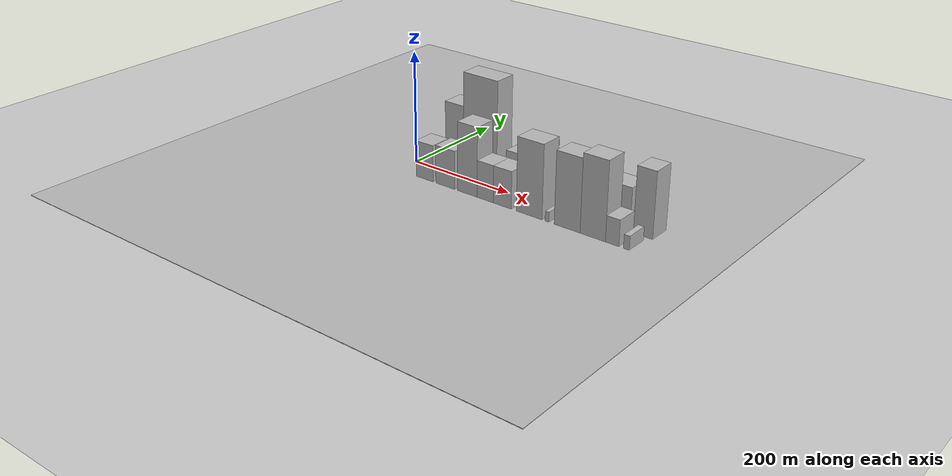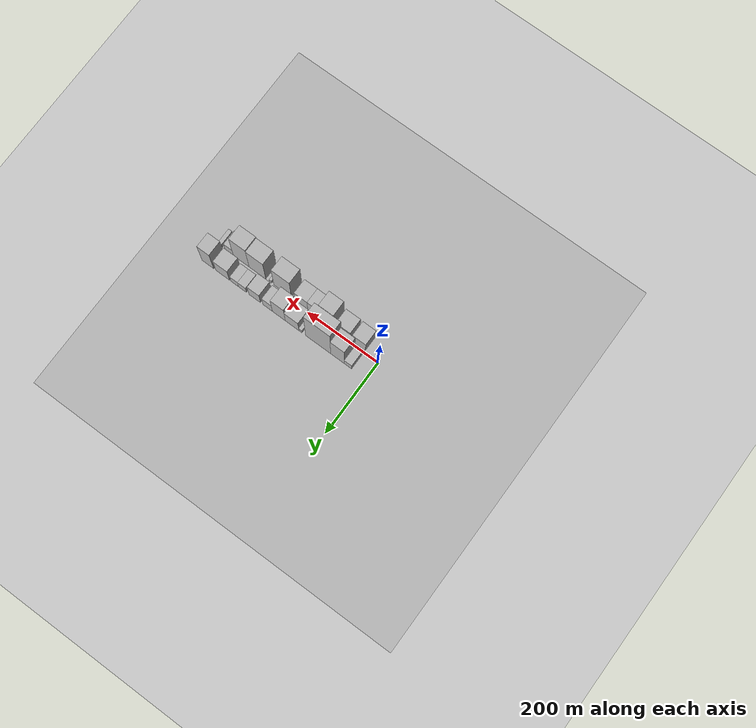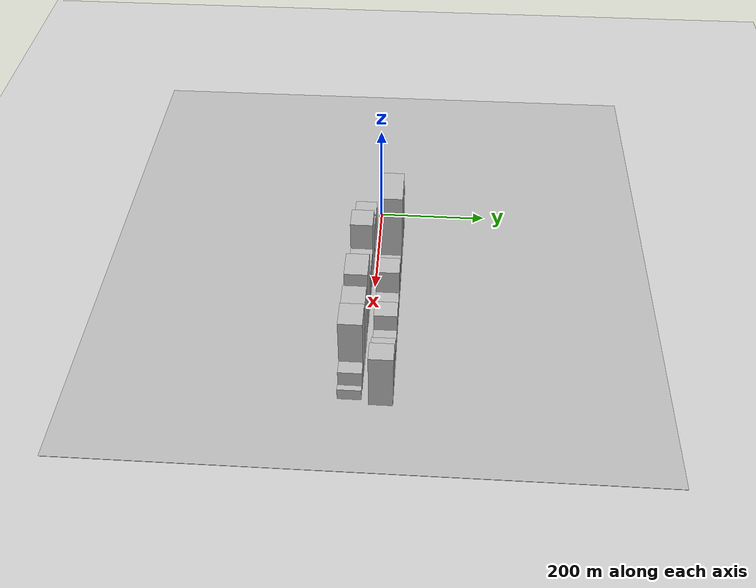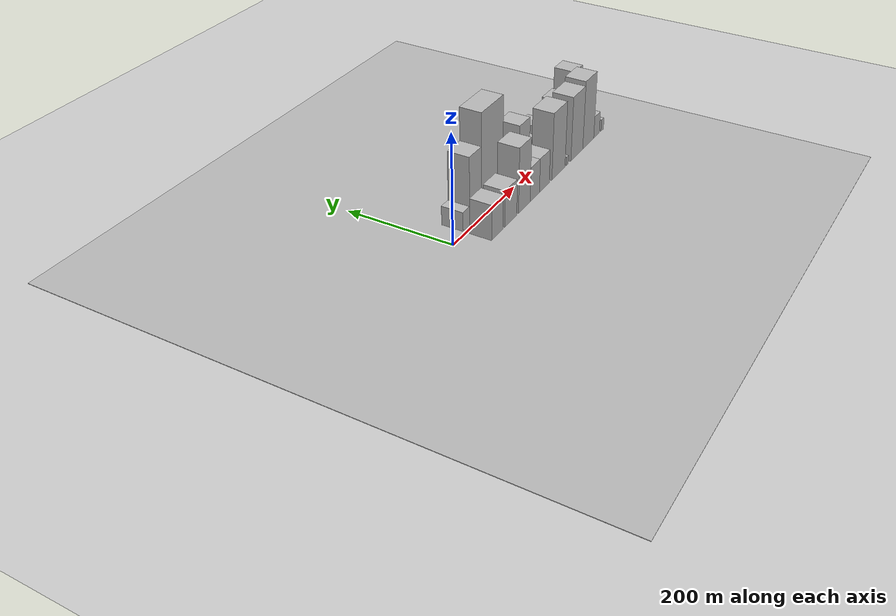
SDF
<?xml version="1.0" encoding="utf-8"?>

<sdf version="1.6">

   <world name="default">

      <gui fullscreen="0">

         <camera name="user_camera">

            <pose>-15 0 4.57585 0 0 0</pose>

            <view_controller>orbit</view_controller>

         </camera>

      </gui>

      <scene>

         <sky>

           <clouds>

             <speed>12</speed>

           </clouds>

         </sky>

         <ambient>0.4 0.4 0.4 1</ambient>

         <background>0.7 0.7 0.7 1</background>

         <shadows>1</shadows>

      </scene>

      <gravity>0 0 -9.8066</gravity>

      <magnetic_field>6e-06 2.3e-05 -4.2e-05</magnetic_field>

      <physics default="0" name="default_physics" type="ode">

         <ode>

            <solver>

               <type>quick</type>

               <iters>10</iters>

               <sor>1.0</sor>

               <use_dynamic_moi_rescaling>0</use_dynamic_moi_rescaling>

            </solver>

            <constraints>

               <cfm>0</cfm>

               <erp>0.2</erp>

               <contact_max_correcting_vel>100</contact_max_correcting_vel>

               <contact_surface_layer>0.001</contact_surface_layer>

            </constraints>

         </ode>

         <max_step_size>0.004</max_step_size>

         <real_time_factor>1</real_time_factor>

         <real_time_update_rate>250</real_time_update_rate>

      </physics>

      <light name="sun" type="directional">

         <cast_shadows>1</cast_shadows>

         <pose>0 0 10 0 0 0</pose>

         <diffuse>0.8 0.8 0.8 1</diffuse>

         <specular>0.2 0.2 0.2 1</specular>

         <attenuation>

            <range>1000</range>

            <constant>0.9</constant>

            <linear>0.01</linear>

            <quadratic>0.001</quadratic>

         </attenuation>

         <direction>-0.5 0.1 -0.9</direction>

      </light>

      <include>

         <name>ground_plane_1</name>

         <uri>model://HANNAS_ground_plane</uri>

         <pose>0 0 0  0 0 0</pose>

      </include>

      <include>

         <name>ground_plane_2</name>

         <uri>model://HANNAS_ground_plane</uri>

         <pose>100 0 0  0 0 0</pose>

      </include>

      <model name="building_1">

         <static>1</static>

         <pose frame="">50.4767 26.0000 0 0.000000 0.000000 1.570796</pose>

         <link name="link">

            <pose frame="">0 0 18.00 0 0 0</pose>

            <collision name="collision">

               <geometry>

                  <box>

                     <size>40.0000 20.9534 36.0000</size>

                  </box>

               </geometry>

               <max_contacts>10</max_contacts>

               <surface>

                  <contact>

                     <ode/>

                  </contact>

                  <bounce/>

                  <friction>

                     <torsional>

                        <ode/>

                     </torsional>

                     <ode/>

                  </friction>

               </surface>

            </collision>

            <visual name="visual">

               <cast_shadows>0</cast_shadows>

               <geometry>

                  <box>

                     <size>40.0000 20.9534 36.0000</size>

                  </box>

               </geometry>

               <material>

                  <script>

                     <uri>model://HANNAS_wall/materials/scripts</uri>

                     <uri>model://HANNAS_wall/materials/textures</uri>

                     <name>vrc/HANNAS_wall</name>

                  </script>

               </material>

            </visual>

            <self_collide>0</self_collide>

            <enable_wind>0</enable_wind>

            <kinematic>0</kinematic>

         </link>

      </model>

      <model name="building_2">

         <static>1</static>

         <pose frame="">80.3056 26.0000 0 0.000000 0.000000 1.570796</pose>

         <link name="link">

            <pose frame="">0 0 63.00 0 0 0</pose>

            <collision name="collision">

               <geometry>

                  <box>

                     <size>40.0000 38.7043 126.0000</size>

                  </box>

               </geometry>

               <max_contacts>10</max_contacts>

               <surface>

                  <contact>

                     <ode/>

                  </contact>

                  <bounce/>

                  <friction>

                     <torsional>

                        <ode/>

                     </torsional>

                     <ode/>

                  </friction>

               </surface>

            </collision>

            <visual name="visual">

               <cast_shadows>0</cast_shadows>

               <geometry>

                  <box>

                     <size>40.0000 38.7043 126.0000</size>

                  </box>

               </geometry>

               <material>

                  <script>

                     <uri>model://HANNAS_wall/materials/scripts</uri>

                     <uri>model://HANNAS_wall/materials/textures</uri>

                     <name>vrc/HANNAS_wall</name>

                  </script>

               </material>

            </visual>

            <self_collide>0</self_collide>

            <enable_wind>0</enable_wind>

            <kinematic>0</kinematic>

         </link>

      </model>

      <model name="building_3">

         <static>1</static>

         <pose frame="">135.0981 26.0000 0 0.000000 0.000000 1.570796</pose>

         <link name="link">

            <pose frame="">0 0 93.00 0 0 0</pose>

            <collision name="collision">

               <geometry>

                  <box>

                     <size>40.0000 70.8808 186.0000</size>

                  </box>

               </geometry>

               <max_contacts>10</max_contacts>

               <surface>

                  <contact>

                     <ode/>

                  </contact>

                  <bounce/>

                  <friction>

                     <torsional>

                        <ode/>

                     </torsional>

                     <ode/>

                  </friction>

               </surface>

            </collision>

            <visual name="visual">

               <cast_shadows>0</cast_shadows>

               <geometry>

                  <box>

                     <size>40.0000 70.8808 186.0000</size>

                  </box>

               </geometry>

               <material>

                  <script>

                     <uri>model://HANNAS_wall/materials/scripts</uri>

                     <uri>model://HANNAS_wall/materials/textures</uri>

                     <name>vrc/HANNAS_wall</name>

                  </script>

               </material>

            </visual>

            <self_collide>0</self_collide>

            <enable_wind>0</enable_wind>

            <kinematic>0</kinematic>

         </link>

      </model>

      <model name="building_4">

         <static>1</static>

         <pose frame="">185.2259 26.0000 0 0.000000 0.000000 1.570796</pose>

         <link name="link">

            <pose frame="">0 0 10.50 0 0 0</pose>

            <collision name="collision">

               <geometry>

                  <box>

                     <size>40.0000 9.3748 21.0000</size>

                  </box>

               </geometry>

               <max_contacts>10</max_contacts>

               <surface>

                  <contact>

                     <ode/>

                  </contact>

                  <bounce/>

                  <friction>

                     <torsional>

                        <ode/>

                     </torsional>

                     <ode/>

                  </friction>

               </surface>

            </collision>

            <visual name="visual">

               <cast_shadows>0</cast_shadows>

               <geometry>

                  <box>

                     <size>40.0000 9.3748 21.0000</size>

                  </box>

               </geometry>

               <material>

                  <script>

                     <uri>model://HANNAS_wall/materials/scripts</uri>

                     <uri>model://HANNAS_wall/materials/textures</uri>

                     <name>vrc/HANNAS_wall</name>

                  </script>

               </material>

            </visual>

            <self_collide>0</self_collide>

            <enable_wind>0</enable_wind>

            <kinematic>0</kinematic>

         </link>

      </model>

      <model name="building_5">

         <static>1</static>

         <pose frame="">209.4466 26.0000 0 0.000000 0.000000 1.570796</pose>

         <link name="link">

            <pose frame="">0 0 36.00 0 0 0</pose>

            <collision name="collision">

               <geometry>

                  <box>

                     <size>40.0000 39.0666 72.0000</size>

                  </box>

               </geometry>

               <max_contacts>10</max_contacts>

               <surface>

                  <contact>

                     <ode/>

                  </contact>

                  <bounce/>

                  <friction>

                     <torsional>

                        <ode/>

                     </torsional>

                     <ode/>

                  </friction>

               </surface>

            </collision>

            <visual name="visual">

               <cast_shadows>0</cast_shadows>

               <geometry>

                  <box>

                     <size>40.0000 39.0666 72.0000</size>

                  </box>

               </geometry>

               <material>

                  <script>

                     <uri>model://HANNAS_wall/materials/scripts</uri>

                     <uri>model://HANNAS_wall/materials/textures</uri>

                     <name>vrc/HANNAS_wall</name>

                  </script>

               </material>

            </visual>

            <self_collide>0</self_collide>

            <enable_wind>0</enable_wind>

            <kinematic>0</kinematic>

         </link>

      </model>

      <model name="building_6">

         <static>1</static>

         <pose frame="">247.3911 26.0000 0 0.000000 0.000000 1.570796</pose>

         <link name="link">

            <pose frame="">0 0 51.00 0 0 0</pose>

            <collision name="collision">

               <geometry>

                  <box>

                     <size>40.0000 36.8223 102.0000</size>

                  </box>

               </geometry>

               <max_contacts>10</max_contacts>

               <surface>

                  <contact>

                     <ode/>

                  </contact>

                  <bounce/>

                  <friction>

                     <torsional>

                        <ode/>

                     </torsional>

                     <ode/>

                  </friction>

               </surface>

            </collision>

            <visual name="visual">

               <cast_shadows>0</cast_shadows>

               <geometry>

                  <box>

                     <size>40.0000 36.8223 102.0000</size>

                  </box>

               </geometry>

               <material>

                  <script>

                     <uri>model://HANNAS_wall/materials/scripts</uri>

                     <uri>model://HANNAS_wall/materials/textures</uri>

                     <name>vrc/HANNAS_wall</name>

                  </script>

               </material>

            </visual>

            <self_collide>0</self_collide>

            <enable_wind>0</enable_wind>

            <kinematic>0</kinematic>

         </link>

      </model>

      <model name="building_7">

         <static>1</static>

         <pose frame="">279.3047 26.0000 0 0.000000 0.000000 1.570796</pose>

         <link name="link">

            <pose frame="">0 0 27.00 0 0 0</pose>

            <collision name="collision">

               <geometry>

                  <box>

                     <size>40.0000 27.0050 54.0000</size>

                  </box>

               </geometry>

               <max_contacts>10</max_contacts>

               <surface>

                  <contact>

                     <ode/>

                  </contact>

                  <bounce/>

                  <friction>

                     <torsional>

                        <ode/>

                     </torsional>

                     <ode/>

                  </friction>

               </surface>

            </collision>

            <visual name="visual">

               <cast_shadows>0</cast_shadows>

               <geometry>

                  <box>

                     <size>40.0000 27.0050 54.0000</size>

                  </box>

               </geometry>

               <material>

                  <script>

                     <uri>model://HANNAS_wall/materials/scripts</uri>

                     <uri>model://HANNAS_wall/materials/textures</uri>

                     <name>vrc/HANNAS_wall</name>

                  </script>

               </material>

            </visual>

            <self_collide>0</self_collide>

            <enable_wind>0</enable_wind>

            <kinematic>0</kinematic>

         </link>

      </model>

      <model name="building_8">

         <static>1</static>

         <pose frame="">316.4989 26.0000 0 0.000000 0.000000 1.570796</pose>

         <link name="link">

            <pose frame="">0 0 33.00 0 0 0</pose>

            <collision name="collision">

               <geometry>

                  <box>

                     <size>40.0000 33.3832 66.0000</size>

                  </box>

               </geometry>

               <max_contacts>10</max_contacts>

               <surface>

                  <contact>

                     <ode/>

                  </contact>

                  <bounce/>

                  <friction>

                     <torsional>

                        <ode/>

                     </torsional>

                     <ode/>

                  </friction>

               </surface>

            </collision>

            <visual name="visual">

               <cast_shadows>0</cast_shadows>

               <geometry>

                  <box>

                     <size>40.0000 33.3832 66.0000</size>

                  </box>

               </geometry>

               <material>

                  <script>

                     <uri>model://HANNAS_wall/materials/scripts</uri>

                     <uri>model://HANNAS_wall/materials/textures</uri>

                     <name>vrc/HANNAS_wall</name>

                  </script>

               </material>

            </visual>

            <self_collide>0</self_collide>

            <enable_wind>0</enable_wind>

            <kinematic>0</kinematic>

         </link>

      </model>

      <model name="building_9">

         <static>1</static>

         <pose frame="">351.6913 26.0000 0 0.000000 0.000000 1.570796</pose>

         <link name="link">

            <pose frame="">0 0 19.50 0 0 0</pose>

            <collision name="collision">

               <geometry>

                  <box>

                     <size>40.0000 23.0017 39.0000</size>

                  </box>

               </geometry>

               <max_contacts>10</max_contacts>

               <surface>

                  <contact>

                     <ode/>

                  </contact>

                  <bounce/>

                  <friction>

                     <torsional>

                        <ode/>

                     </torsional>

                     <ode/>

                  </friction>

               </surface>

            </collision>

            <visual name="visual">

               <cast_shadows>0</cast_shadows>

               <geometry>

                  <box>

                     <size>40.0000 23.0017 39.0000</size>

                  </box>

               </geometry>

               <material>

                  <script>

                     <uri>model://HANNAS_wall/materials/scripts</uri>

                     <uri>model://HANNAS_wall/materials/textures</uri>

                     <name>vrc/HANNAS_wall</name>

                  </script>

               </material>

            </visual>

            <self_collide>0</self_collide>

            <enable_wind>0</enable_wind>

            <kinematic>0</kinematic>

         </link>

      </model>

      <model name="building_10">

         <static>1</static>

         <pose frame="">374.2593 26.0000 0 0.000000 0.000000 1.570796</pose>

         <link name="link">

            <pose frame="">0 0 19.50 0 0 0</pose>

            <collision name="collision">

               <geometry>

                  <box>

                     <size>40.0000 22.1343 39.0000</size>

                  </box>

               </geometry>

               <max_contacts>10</max_contacts>

               <surface>

                  <contact>

                     <ode/>

                  </contact>

                  <bounce/>

                  <friction>

                     <torsional>

                        <ode/>

                     </torsional>

                     <ode/>

                  </friction>

               </surface>

            </collision>

            <visual name="visual">

               <cast_shadows>0</cast_shadows>

               <geometry>

                  <box>

                     <size>40.0000 22.1343 39.0000</size>

                  </box>

               </geometry>

               <material>

                  <script>

                     <uri>model://HANNAS_wall/materials/scripts</uri>

                     <uri>model://HANNAS_wall/materials/textures</uri>

                     <name>vrc/HANNAS_wall</name>

                  </script>

               </material>

            </visual>

            <self_collide>0</self_collide>

            <enable_wind>0</enable_wind>

            <kinematic>0</kinematic>

         </link>

      </model>

      <model name="building_11">

         <static>1</static>

         <pose frame="">409.3390 26.0000 0 0.000000 0.000000 1.570796</pose>

         <link name="link">

            <pose frame="">0 0 37.50 0 0 0</pose>

            <collision name="collision">

               <geometry>

                  <box>

                     <size>40.0000 40.0251 75.0000</size>

                  </box>

               </geometry>

               <max_contacts>10</max_contacts>

               <surface>

                  <contact>

                     <ode/>

                  </contact>

                  <bounce/>

                  <friction>

                     <torsional>

                        <ode/>

                     </torsional>

                     <ode/>

                  </friction>

               </surface>

            </collision>

            <visual name="visual">

               <cast_shadows>0</cast_shadows>

               <geometry>

                  <box>

                     <size>40.0000 40.0251 75.0000</size>

                  </box>

               </geometry>

               <material>

                  <script>

                     <uri>model://HANNAS_wall/materials/scripts</uri>

                     <uri>model://HANNAS_wall/materials/textures</uri>

                     <name>vrc/HANNAS_wall</name>

                  </script>

               </material>

            </visual>

            <self_collide>0</self_collide>

            <enable_wind>0</enable_wind>

            <kinematic>0</kinematic>

         </link>

      </model>

      <model name="building_12">

         <static>1</static>

         <pose frame="">452.5231 26.0000 0 0.000000 0.000000 1.570796</pose>

         <link name="link">

            <pose frame="">0 0 57.00 0 0 0</pose>

            <collision name="collision">

               <geometry>

                  <box>

                     <size>40.0000 34.3430 114.0000</size>

                  </box>

               </geometry>

               <max_contacts>10</max_contacts>

               <surface>

                  <contact>

                     <ode/>

                  </contact>

                  <bounce/>

                  <friction>

                     <torsional>

                        <ode/>

                     </torsional>

                     <ode/>

                  </friction>

               </surface>

            </collision>

            <visual name="visual">

               <cast_shadows>0</cast_shadows>

               <geometry>

                  <box>

                     <size>40.0000 34.3430 114.0000</size>

                  </box>

               </geometry>

               <material>

                  <script>

                     <uri>model://HANNAS_wall/materials/scripts</uri>

                     <uri>model://HANNAS_wall/materials/textures</uri>

                     <name>vrc/HANNAS_wall</name>

                  </script>

               </material>

            </visual>

            <self_collide>0</self_collide>

            <enable_wind>0</enable_wind>

            <kinematic>0</kinematic>

         </link>

      </model>

      <model name="building_13">

         <static>1</static>

         <pose frame="">58.4960 -26.0000 0 0.000000 0.000000 1.570796</pose>

         <link name="link">

            <pose frame="">0 0 33.00 0 0 0</pose>

            <collision name="collision">

               <geometry>

                  <box>

                     <size>40.0000 36.9920 66.0000</size>

                  </box>

               </geometry>

               <max_contacts>10</max_contacts>

               <surface>

                  <contact>

                     <ode/>

                  </contact>

                  <bounce/>

                  <friction>

                     <torsional>

                        <ode/>

                     </torsional>

                     <ode/>

                  </friction>

               </surface>

            </collision>

            <visual name="visual">

               <cast_shadows>0</cast_shadows>

               <geometry>

                  <box>

                     <size>40.0000 36.9920 66.0000</size>

                  </box>

               </geometry>

               <material>

                  <script>

                     <uri>model://HANNAS_wall/materials/scripts</uri>

                     <uri>model://HANNAS_wall/materials/textures</uri>

                     <name>vrc/HANNAS_wall</name>

                  </script>

               </material>

            </visual>

            <self_collide>0</self_collide>

            <enable_wind>0</enable_wind>

            <kinematic>0</kinematic>

         </link>

      </model>

      <model name="building_14">

         <static>1</static>

         <pose frame="">103.3198 -26.0000 0 0.000000 0.000000 1.570796</pose>

         <link name="link">

            <pose frame="">0 0 34.50 0 0 0</pose>

            <collision name="collision">

               <geometry>

                  <box>

                     <size>40.0000 40.6556 69.0000</size>

                  </box>

               </geometry>

               <max_contacts>10</max_contacts>

               <surface>

                  <contact>

                     <ode/>

                  </contact>

                  <bounce/>

                  <friction>

                     <torsional>

                        <ode/>

                     </torsional>

                     <ode/>

                  </friction>

               </surface>

            </collision>

            <visual name="visual">

               <cast_shadows>0</cast_shadows>

               <geometry>

                  <box>

                     <size>40.0000 40.6556 69.0000</size>

                  </box>

               </geometry>

               <material>

                  <script>

                     <uri>model://HANNAS_wall/materials/scripts</uri>

                     <uri>model://HANNAS_wall/materials/textures</uri>

                     <name>vrc/HANNAS_wall</name>

                  </script>

               </material>

            </visual>

            <self_collide>0</self_collide>

            <enable_wind>0</enable_wind>

            <kinematic>0</kinematic>

         </link>

      </model>

      <model name="building_15">

         <static>1</static>

         <pose frame="">150.1846 -26.0000 0 0.000000 0.000000 1.570796</pose>

         <link name="link">

            <pose frame="">0 0 61.50 0 0 0</pose>

            <collision name="collision">

               <geometry>

                  <box>

                     <size>40.0000 41.0740 123.0000</size>

                  </box>

               </geometry>

               <max_contacts>10</max_contacts>

               <surface>

                  <contact>

                     <ode/>

                  </contact>

                  <bounce/>

                  <friction>

                     <torsional>

                        <ode/>

                     </torsional>

                     <ode/>

                  </friction>

               </surface>

            </collision>

            <visual name="visual">

               <cast_shadows>0</cast_shadows>

               <geometry>

                  <box>

                     <size>40.0000 41.0740 123.0000</size>

                  </box>

               </geometry>

               <material>

                  <script>

                     <uri>model://HANNAS_wall/materials/scripts</uri>

                     <uri>model://HANNAS_wall/materials/textures</uri>

                     <name>vrc/HANNAS_wall</name>

                  </script>

               </material>

            </visual>

            <self_collide>0</self_collide>

            <enable_wind>0</enable_wind>

            <kinematic>0</kinematic>

         </link>

      </model>

      <model name="building_16">

         <static>1</static>

         <pose frame="">187.2796 -26.0000 0 0.000000 0.000000 1.570796</pose>

         <link name="link">

            <pose frame="">0 0 33.00 0 0 0</pose>

            <collision name="collision">

               <geometry>

                  <box>

                     <size>40.0000 33.1161 66.0000</size>

                  </box>

               </geometry>

               <max_contacts>10</max_contacts>

               <surface>

                  <contact>

                     <ode/>

                  </contact>

                  <bounce/>

                  <friction>

                     <torsional>

                        <ode/>

                     </torsional>

                     <ode/>

                  </friction>

               </surface>

            </collision>

            <visual name="visual">

               <cast_shadows>0</cast_shadows>

               <geometry>

                  <box>

                     <size>40.0000 33.1161 66.0000</size>

                  </box>

               </geometry>

               <material>

                  <script>

                     <uri>model://HANNAS_wall/materials/scripts</uri>

                     <uri>model://HANNAS_wall/materials/textures</uri>

                     <name>vrc/HANNAS_wall</name>

                  </script>

               </material>

            </visual>

            <self_collide>0</self_collide>

            <enable_wind>0</enable_wind>

            <kinematic>0</kinematic>

         </link>

      </model>

      <model name="building_17">

         <static>1</static>

         <pose frame="">222.0621 -26.0000 0 0.000000 0.000000 1.570796</pose>

         <link name="link">

            <pose frame="">0 0 33.00 0 0 0</pose>

            <collision name="collision">

               <geometry>

                  <box>

                     <size>40.0000 36.4490 66.0000</size>

                  </box>

               </geometry>

               <max_contacts>10</max_contacts>

               <surface>

                  <contact>

                     <ode/>

                  </contact>

                  <bounce/>

                  <friction>

                     <torsional>

                        <ode/>

                     </torsional>

                     <ode/>

                  </friction>

               </surface>

            </collision>

            <visual name="visual">

               <cast_shadows>0</cast_shadows>

               <geometry>

                  <box>

                     <size>40.0000 36.4490 66.0000</size>

                  </box>

               </geometry>

               <material>

                  <script>

                     <uri>model://HANNAS_wall/materials/scripts</uri>

                     <uri>model://HANNAS_wall/materials/textures</uri>

                     <name>vrc/HANNAS_wall</name>

                  </script>

               </material>

            </visual>

            <self_collide>0</self_collide>

            <enable_wind>0</enable_wind>

            <kinematic>0</kinematic>

         </link>

      </model>

      <model name="building_18">

         <static>1</static>

         <pose frame="">275.4888 -26.0000 0 0.000000 0.000000 1.570796</pose>

         <link name="link">

            <pose frame="">0 0 64.50 0 0 0</pose>

            <collision name="collision">

               <geometry>

                  <box>

                     <size>40.0000 50.4043 129.0000</size>

                  </box>

               </geometry>

               <max_contacts>10</max_contacts>

               <surface>

                  <contact>

                     <ode/>

                  </contact>

                  <bounce/>

                  <friction>

                     <torsional>

                        <ode/>

                     </torsional>

                     <ode/>

                  </friction>

               </surface>

            </collision>

            <visual name="visual">

               <cast_shadows>0</cast_shadows>

               <geometry>

                  <box>

                     <size>40.0000 50.4043 129.0000</size>

                  </box>

               </geometry>

               <material>

                  <script>

                     <uri>model://HANNAS_wall/materials/scripts</uri>

                     <uri>model://HANNAS_wall/materials/textures</uri>

                     <name>vrc/HANNAS_wall</name>

                  </script>

               </material>

            </visual>

            <self_collide>0</self_collide>

            <enable_wind>0</enable_wind>

            <kinematic>0</kinematic>

         </link>

      </model>

      <model name="building_19">

         <static>1</static>

         <pose frame="">310.3561 -26.0000 0 0.000000 0.000000 1.570796</pose>

         <link name="link">

            <pose frame="">0 0 9.00 0 0 0</pose>

            <collision name="collision">

               <geometry>

                  <box>

                     <size>40.0000 7.3302 18.0000</size>

                  </box>

               </geometry>

               <max_contacts>10</max_contacts>

               <surface>

                  <contact>

                     <ode/>

                  </contact>

                  <bounce/>

                  <friction>

                     <torsional>

                        <ode/>

                     </torsional>

                     <ode/>

                  </friction>

               </surface>

            </collision>

            <visual name="visual">

               <cast_shadows>0</cast_shadows>

               <geometry>

                  <box>

                     <size>40.0000 7.3302 18.0000</size>

                  </box>

               </geometry>

               <material>

                  <script>

                     <uri>model://HANNAS_wall/materials/scripts</uri>

                     <uri>model://HANNAS_wall/materials/textures</uri>

                     <name>vrc/HANNAS_wall</name>

                  </script>

               </material>

            </visual>

            <self_collide>0</self_collide>

            <enable_wind>0</enable_wind>

            <kinematic>0</kinematic>

         </link>

      </model>

      <model name="building_20">

         <static>1</static>

         <pose frame="">348.1432 -26.0000 0 0.000000 0.000000 1.570796</pose>

         <link name="link">

            <pose frame="">0 0 63.00 0 0 0</pose>

            <collision name="collision">

               <geometry>

                  <box>

                     <size>40.0000 48.2441 126.0000</size>

                  </box>

               </geometry>

               <max_contacts>10</max_contacts>

               <surface>

                  <contact>

                     <ode/>

                  </contact>

                  <bounce/>

                  <friction>

                     <torsional>

                        <ode/>

                     </torsional>

                     <ode/>

                  </friction>

               </surface>

            </collision>

            <visual name="visual">

               <cast_shadows>0</cast_shadows>

               <geometry>

                  <box>

                     <size>40.0000 48.2441 126.0000</size>

                  </box>

               </geometry>

               <material>

                  <script>

                     <uri>model://HANNAS_wall/materials/scripts</uri>

                     <uri>model://HANNAS_wall/materials/textures</uri>

                     <name>vrc/HANNAS_wall</name>

                  </script>

               </material>

            </visual>

            <self_collide>0</self_collide>

            <enable_wind>0</enable_wind>

            <kinematic>0</kinematic>

         </link>

      </model>

      <model name="building_21">

         <static>1</static>

         <pose frame="">395.3194 -26.0000 0 0.000000 0.000000 1.570796</pose>

         <link name="link">

            <pose frame="">0 0 67.50 0 0 0</pose>

            <collision name="collision">

               <geometry>

                  <box>

                     <size>40.0000 46.1083 135.0000</size>

                  </box>

               </geometry>

               <max_contacts>10</max_contacts>

               <surface>

                  <contact>

                     <ode/>

                  </contact>

                  <bounce/>

                  <friction>

                     <torsional>

                        <ode/>

                     </torsional>

                     <ode/>

                  </friction>

               </surface>

            </collision>

            <visual name="visual">

               <cast_shadows>0</cast_shadows>

               <geometry>

                  <box>

                     <size>40.0000 46.1083 135.0000</size>

                  </box>

               </geometry>

               <material>

                  <script>

                     <uri>model://HANNAS_wall/materials/scripts</uri>

                     <uri>model://HANNAS_wall/materials/textures</uri>

                     <name>vrc/HANNAS_wall</name>

                  </script>

               </material>

            </visual>

            <self_collide>0</self_collide>

            <enable_wind>0</enable_wind>

            <kinematic>0</kinematic>

         </link>

      </model>

      <model name="building_22">

         <static>1</static>

         <pose frame="">430.4102 -26.0000 0 0.000000 0.000000 1.570796</pose>

         <link name="link">

            <pose frame="">0 0 22.50 0 0 0</pose>

            <collision name="collision">

               <geometry>

                  <box>

                     <size>40.0000 24.0734 45.0000</size>

                  </box>

               </geometry>

               <max_contacts>10</max_contacts>

               <surface>

                  <contact>

                     <ode/>

                  </contact>

                  <bounce/>

                  <friction>

                     <torsional>

                        <ode/>

                     </torsional>

                     <ode/>

                  </friction>

               </surface>

            </collision>

            <visual name="visual">

               <cast_shadows>0</cast_shadows>

               <geometry>

                  <box>

                     <size>40.0000 24.0734 45.0000</size>

                  </box>

               </geometry>

               <material>

                  <script>

                     <uri>model://HANNAS_wall/materials/scripts</uri>

                     <uri>model://HANNAS_wall/materials/textures</uri>

                     <name>vrc/HANNAS_wall</name>

                  </script>

               </material>

            </visual>

            <self_collide>0</self_collide>

            <enable_wind>0</enable_wind>

            <kinematic>0</kinematic>

         </link>

      </model>

      <model name="building_23">

         <static>1</static>

         <pose frame="">455.6032 -26.0000 0 0.000000 0.000000 1.570796</pose>

         <link name="link">

            <pose frame="">0 0 12.00 0 0 0</pose>

            <collision name="collision">

               <geometry>

                  <box>

                     <size>40.0000 10.3124 24.0000</size>

                  </box>

               </geometry>

               <max_contacts>10</max_contacts>

               <surface>

                  <contact>

                     <ode/>

                  </contact>

                  <bounce/>

                  <friction>

                     <torsional>

                        <ode/>

                     </torsional>

                     <ode/>

                  </friction>

               </surface>

            </collision>

            <visual name="visual">

               <cast_shadows>0</cast_shadows>

               <geometry>

                  <box>

                     <size>40.0000 10.3124 24.0000</size>

                  </box>

               </geometry>

               <material>

                  <script>

                     <uri>model://HANNAS_wall/materials/scripts</uri>

                     <uri>model://HANNAS_wall/materials/textures</uri>

                     <name>vrc/HANNAS_wall</name>

                  </script>

               </material>

            </visual>

            <self_collide>0</self_collide>

            <enable_wind>0</enable_wind>

            <kinematic>0</kinematic>

         </link>

      </model>

   </world>

</sdf>

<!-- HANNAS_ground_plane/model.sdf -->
<sdf version="1.4">
<model name="HANNAS_ground_plane">
  <static>true</static>
    <link name="link">
      <collision name="collision">
        <geometry>
          <plane>
            <normal>0 0 1</normal>
            <size>1000 1000</size>
          </plane>
        </geometry>
        <surface>
          <friction>
            <ode>
              <mu>100</mu>
              <mu2>50</mu2>
            </ode>
          </friction>
        </surface>
      </collision>
      <visual name="visual">
        <cast_shadows>false</cast_shadows>
        <geometry>
          <plane>
            <normal>0 0 1</normal>
            <size>1000 1000</size>
          </plane>
        </geometry>
        <material>
          <script>
            <uri>model://HANNAS_ground_plane/materials/scripts/HANNAS_ground_plane.material</uri>
	    <uri>model://HANNAS_ground_plane/materials/textures</uri>
            <name>HANNASGroundPlane/Image</name>
          </script>
        </material>
      </visual>
    </link>
  </model>
</sdf>
